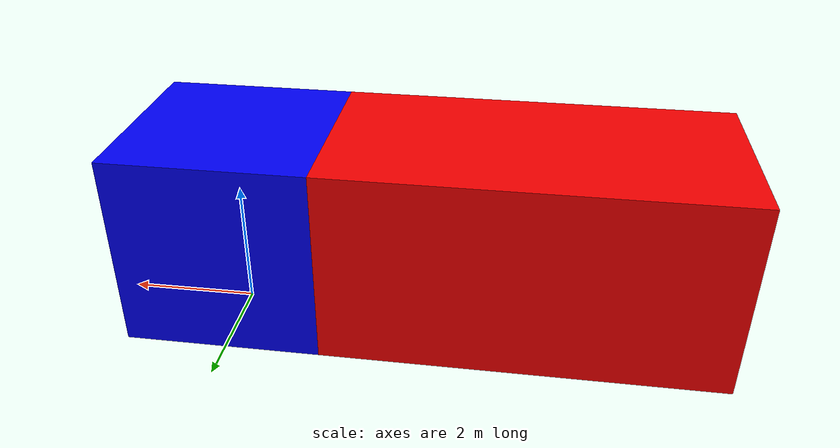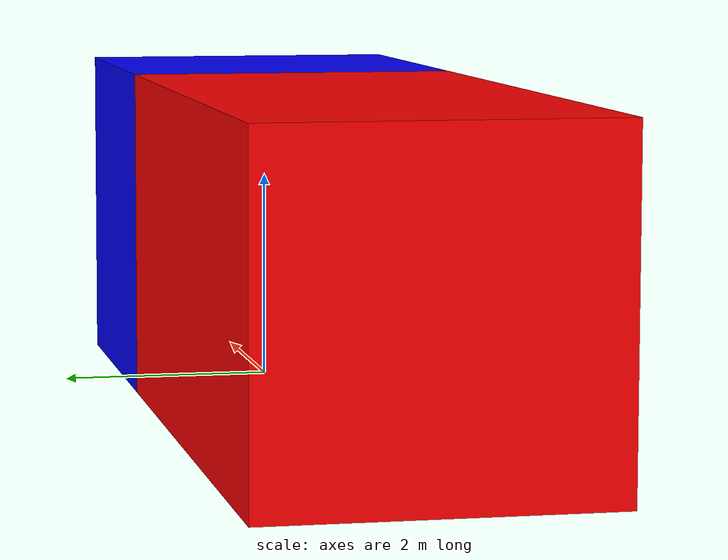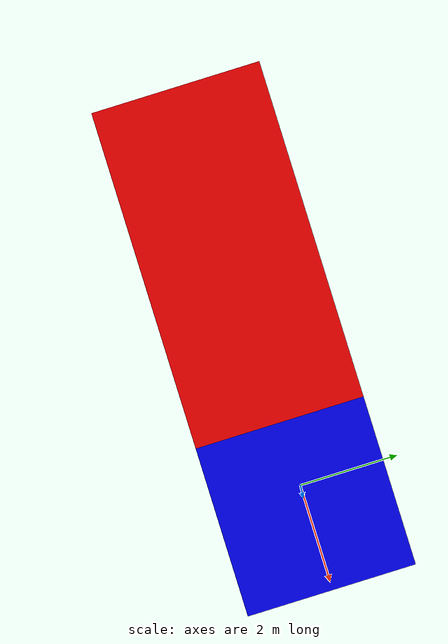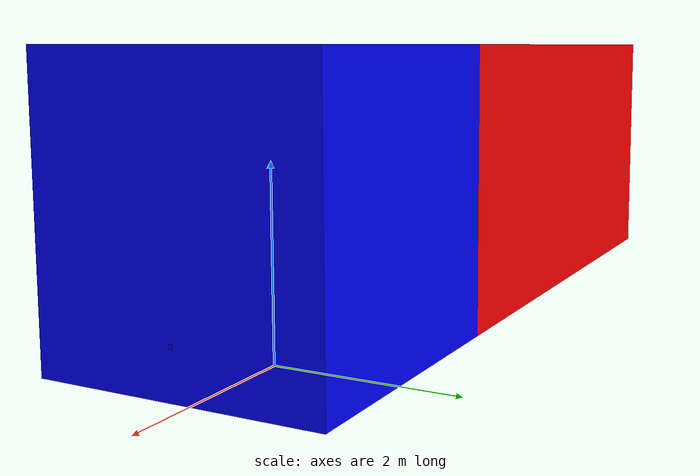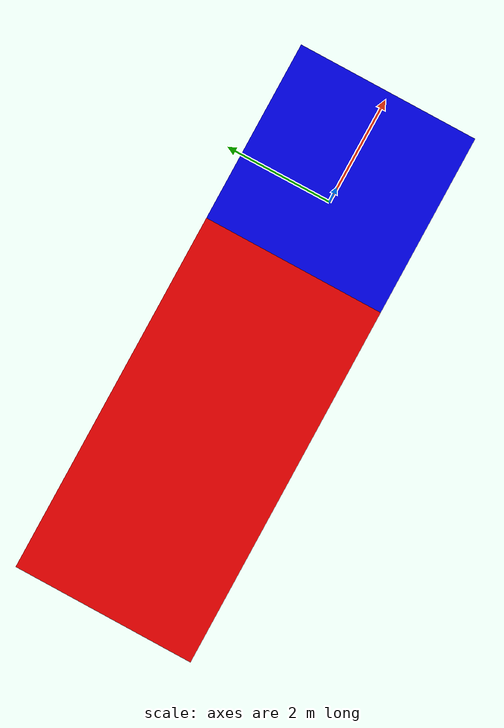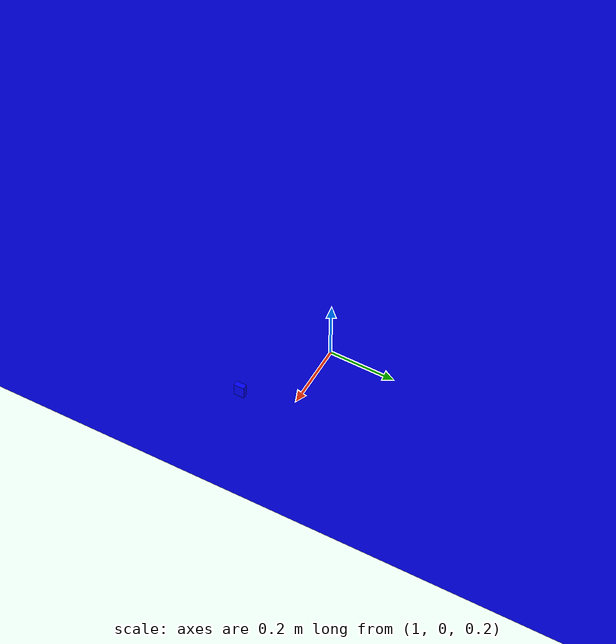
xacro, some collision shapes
<?xml version="1.0"?>
<robot xmlns:xacro="http://www.ros.org/wiki/xacro" name="ego_vehicle">

    <xacro:include filename="$(find my_truckie)/urdf/ego_vehicle.plugins.xacro" />

    <xacro:property name="scale_factor" value="6.0" />

    <xacro:property name="laser_size_x" value="0.03"/>
    <xacro:property name="laser_size_y" value="0.03"/>
    <xacro:property name="laser_size_z" value="0.04"/>
    <xacro:property name="laser_origin_x" value="0.065"/>
    <xacro:property name="laser_origin_y" value="0"/>
    <xacro:property name="laser_origin_z" value="0.025"/>

    <xacro:macro name="default_inertial" params="mass">
        <inertial>
        <mass value="${mass}"/>
        <inertia ixx="1.0" ixy="0.0" ixz="0.0" iyy="1.0" iyz="0.0" izz="1.0"/>
        </inertial>
    </xacro:macro>

    <link name="base_footprint">
        <visual>
            <origin xyz="0 0 0.1" rpy="0 0 0" />
            <geometry>
                <box size="0.001 0.001 0.001" />
            </geometry>
        </visual>
    </link>

    <joint name="base_footprint_joint" type="fixed">
        <origin xyz="0 0 0.1" rpy="0 0 0" />
        <parent link="base_footprint"/>
        <child link="tractor" />
    </joint>

    <!-- Tractor -->
    <link name="tractor">
        <visual>
            <origin xyz="0 0 ${scale_factor*0.25}" rpy="0 0 0"/>
            <geometry>
            <box size="${scale_factor*0.5} ${scale_factor*0.5} ${scale_factor*0.5}"/>
            </geometry>
            <material name="blue">
            <color rgba="0 0 1 1"/>
            </material>
        </visual>
        <collision>
            <origin xyz="0 0 ${scale_factor*0.25}" rpy="0 0 0"/>
            <geometry>
            <box size="${scale_factor*0.5} ${scale_factor*0.5} ${scale_factor*0.5}"/>
            </geometry>
            <surface>
            <friction> <!-- friction coefficients must be set to 0 allowing it to move -->
                <ode>
                <mu>0</mu>
                <mu2>0</mu2>
                </ode>
            </friction>
            </surface>
        </collision>
        <inertial>
            <mass value="1"/>
            <origin xyz="0 0 0" rpy="0 0 0"/>
            <inertia ixx="1" ixy="0" ixz="0" iyy="1" iyz="0" izz="1"/>
        </inertial>
    </link>

    <!-- Tractor-trailer Joint -->
    <joint name="hitch_joint" type="revolute">
        <parent link="tractor"/>
        <child link="trailer"/>
        <origin xyz="0 0 0" rpy="0 0 0"/>
        <axis xyz="0 0 1"/>
        <limit effort="1000" velocity="1000.0" lower="-1.5708" upper="1.5708"/>
    </joint>

    <!-- Trailer -->
    <link name="trailer">
        <visual>
            <origin xyz="-${scale_factor*0.75} 0 ${scale_factor*0.25}" rpy="0 0 0"/>
            <geometry>
            <box size="${scale_factor*1} ${scale_factor*0.5} ${scale_factor*0.5}"/>
            </geometry>
            <material name="red">
            <color rgba="1 0 0 1"/>
            </material>
        </visual>
        <collision>
            <origin xyz="-${scale_factor*0.75} 0 ${scale_factor*0.25}" rpy="0 0 0"/>
            <geometry>
            <box size="${scale_factor*1} ${scale_factor*0.5} ${scale_factor*0.5}"/>
            </geometry>
            <surface>
            <friction> <!-- friction coefficients must be set to 0 allowing it to move -->
                <ode>
                <mu>0</mu>
                <mu2>0</mu2>
                </ode>
            </friction>
            </surface>
        </collision>
        <inertial>
            <mass value="1"/>
            <origin xyz="0 0 0" rpy="0 0 0"/>
            <inertia ixx="1" ixy="0" ixz="0" iyy="1" iyz="0" izz="1"/>
        </inertial>
    </link>

    <!--Laser Scan-->
    <link name="sensor_laser">
        <visual>
        <geometry>
            <mesh filename="package://my_truckie/meshes/hokuyo.dae"/>
            <!--box size="${laser_size_x} ${laser_size_y} ${laser_size_z}"/-->
        </geometry>
        <material name="blue"/>
        </visual>
        <collision>
        <geometry>
            <box size="${laser_size_x} ${laser_size_y} ${laser_size_z}"/>
        </geometry>
        </collision>
        <xacro:default_inertial mass="0.02"/>
    </link>

    <joint name="sensor_laser_joint" type="fixed">
        <origin xyz="1.5 0 0.5" rpy="0 0 0" />
        <parent link="tractor"/>
        <child link="sensor_laser" />
    </joint>

    <!-- Joint Controller for Hitch Joint -->
    <transmission name="trans_hitch_joint">
        <type>transmission_interface/SimpleTransmission</type>
        <joint name="hitch_joint">
        <hardwareInterface>hardware_interface/EffortJointInterface</hardwareInterface>
        </joint>
        <actuator name="motor_hitch_joint">
        <hardwareInterface>hardware_interface/EffortJointInterface</hardwareInterface>
        <mechanicalReduction>1</mechanicalReduction>
        </actuator>
    </transmission>

</robot>
